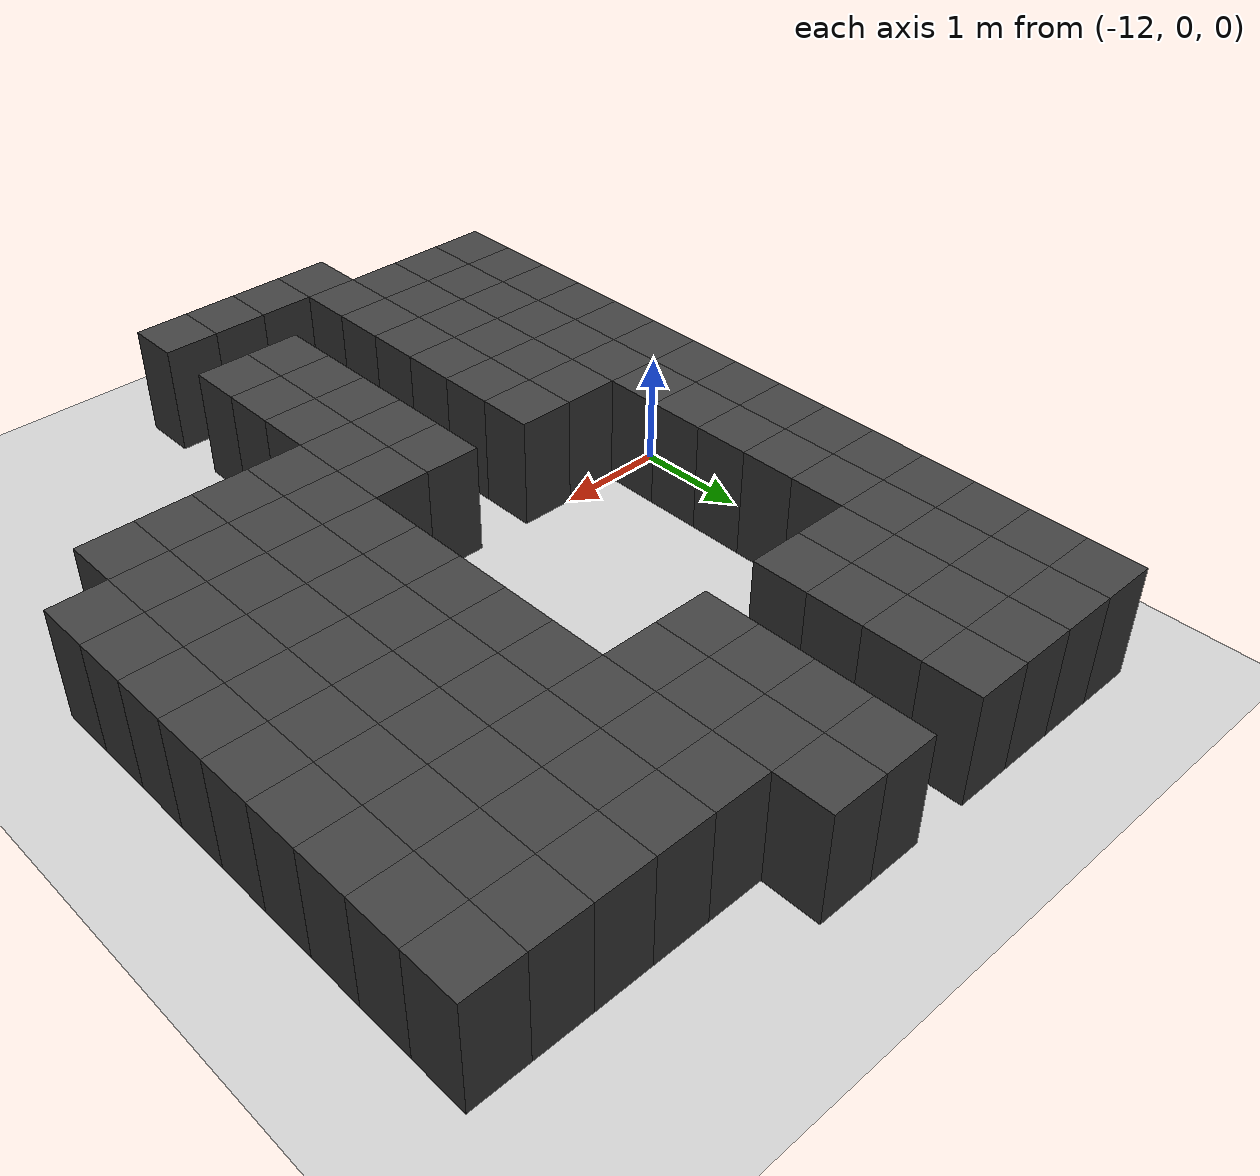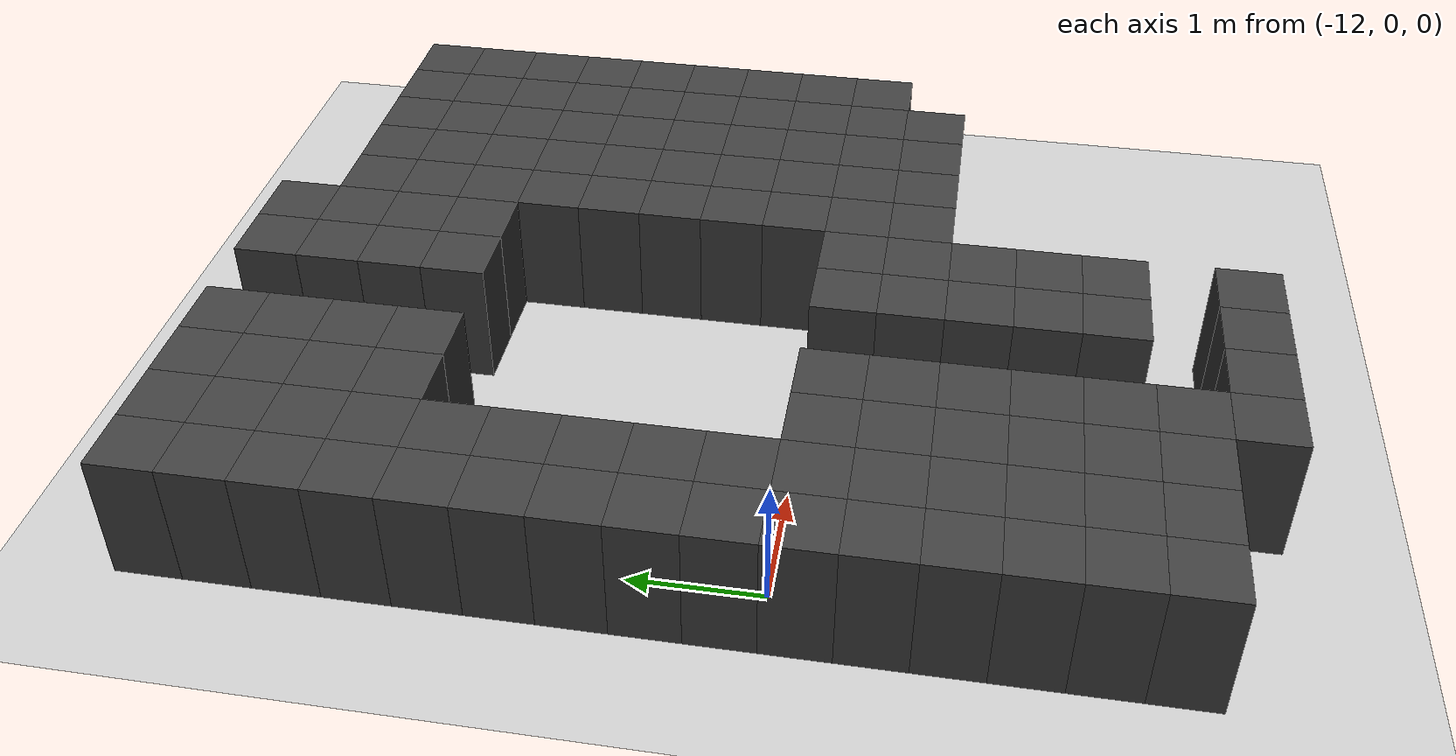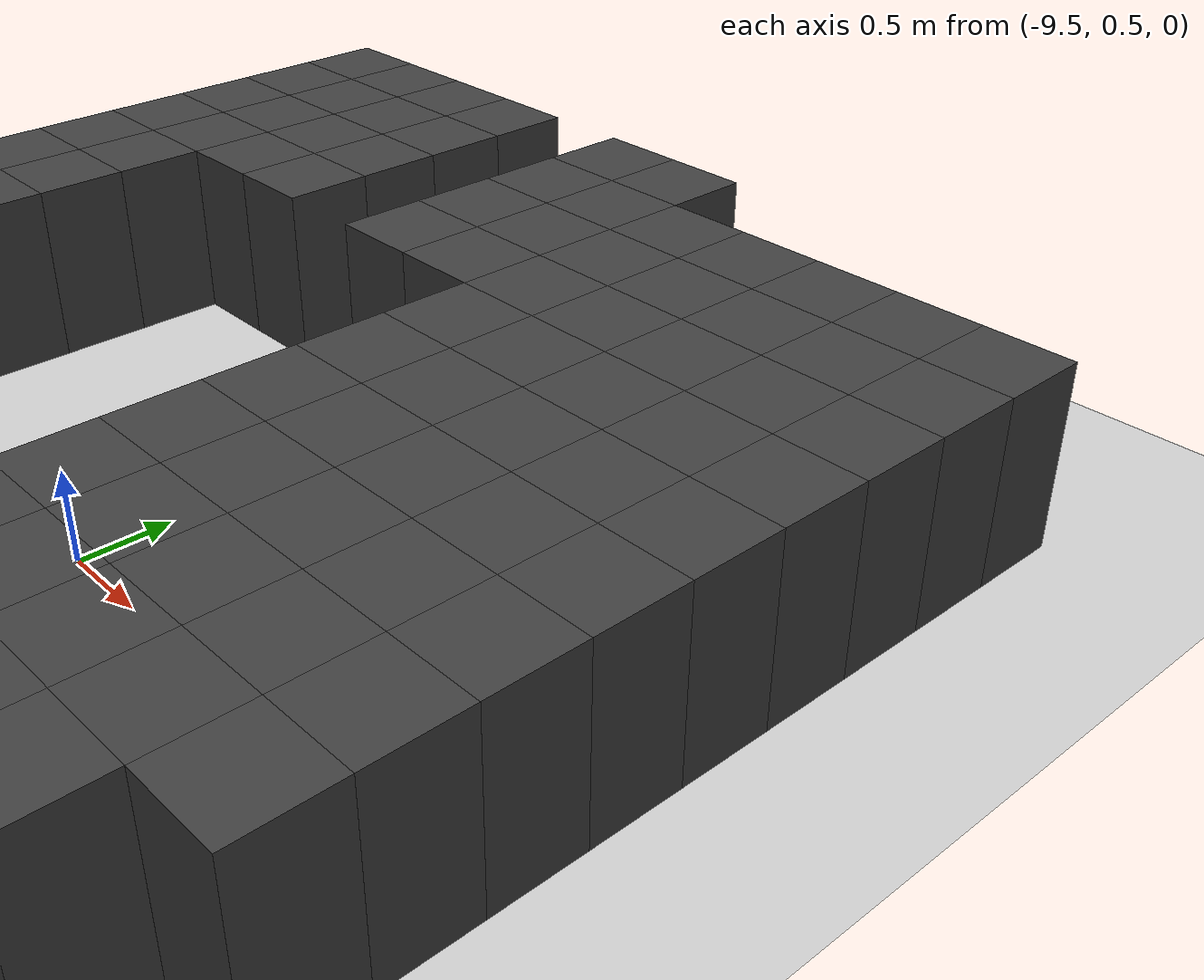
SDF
<sdf version="1.7">
 <world name="map_14510">
  <model name="ground_plane">
   <static>true</static>
   <link name="link">
    <collision name="collision">
     <geometry><plane><normal>0 0 1</normal><size>200 200</size></plane></geometry>
    </collision>
    <visual name="visual">
     <geometry><plane><normal>0 0 1</normal><size>200 200</size></plane></geometry>
     <material><ambient>0.8 0.8 0.8 1</ambient><diffuse>0.8 0.8 0.8 1</diffuse></material>
    </visual>
   </link>
  </model>
  <model name="maze_environment">
   <static>true</static>
   <link name="wall_518">
    <pose>-12.250 4.250 0.500 0 0 0</pose>
    <collision name="col"><geometry><box><size>0.5 0.5 1.0</size></box></geometry></collision>
    <visual name="vis">
     <geometry><box><size>0.5 0.5 1.0</size></box></geometry>
     <material><ambient>0.15 0.15 0.15 1</ambient><diffuse>0.25 0.25 0.25 1</diffuse></material>
    </visual>
   </link>
   <link name="wall_519">
    <pose>-11.750 4.250 0.500 0 0 0</pose>
    <collision name="col"><geometry><box><size>0.5 0.5 1.0</size></box></geometry></collision>
    <visual name="vis">
     <geometry><box><size>0.5 0.5 1.0</size></box></geometry>
     <material><ambient>0.15 0.15 0.15 1</ambient><diffuse>0.25 0.25 0.25 1</diffuse></material>
    </visual>
   </link>
   <link name="wall_520">
    <pose>-11.250 4.250 0.500 0 0 0</pose>
    <collision name="col"><geometry><box><size>0.5 0.5 1.0</size></box></geometry></collision>
    <visual name="vis">
     <geometry><box><size>0.5 0.5 1.0</size></box></geometry>
     <material><ambient>0.15 0.15 0.15 1</ambient><diffuse>0.25 0.25 0.25 1</diffuse></material>
    </visual>
   </link>
   <link name="wall_521">
    <pose>-10.750 4.250 0.500 0 0 0</pose>
    <collision name="col"><geometry><box><size>0.5 0.5 1.0</size></box></geometry></collision>
    <visual name="vis">
     <geometry><box><size>0.5 0.5 1.0</size></box></geometry>
     <material><ambient>0.15 0.15 0.15 1</ambient><diffuse>0.25 0.25 0.25 1</diffuse></material>
    </visual>
   </link>
   <link name="wall_522">
    <pose>-9.750 4.250 0.500 0 0 0</pose>
    <collision name="col"><geometry><box><size>0.5 0.5 1.0</size></box></geometry></collision>
    <visual name="vis">
     <geometry><box><size>0.5 0.5 1.0</size></box></geometry>
     <material><ambient>0.15 0.15 0.15 1</ambient><diffuse>0.25 0.25 0.25 1</diffuse></material>
    </visual>
   </link>
   <link name="wall_523">
    <pose>-9.250 4.250 0.500 0 0 0</pose>
    <collision name="col"><geometry><box><size>0.5 0.5 1.0</size></box></geometry></collision>
    <visual name="vis">
     <geometry><box><size>0.5 0.5 1.0</size></box></geometry>
     <material><ambient>0.15 0.15 0.15 1</ambient><diffuse>0.25 0.25 0.25 1</diffuse></material>
    </visual>
   </link>
   <link name="wall_552">
    <pose>-12.250 3.750 0.500 0 0 0</pose>
    <collision name="col"><geometry><box><size>0.5 0.5 1.0</size></box></geometry></collision>
    <visual name="vis">
     <geometry><box><size>0.5 0.5 1.0</size></box></geometry>
     <material><ambient>0.15 0.15 0.15 1</ambient><diffuse>0.25 0.25 0.25 1</diffuse></material>
    </visual>
   </link>
   <link name="wall_553">
    <pose>-11.750 3.750 0.500 0 0 0</pose>
    <collision name="col"><geometry><box><size>0.5 0.5 1.0</size></box></geometry></collision>
    <visual name="vis">
     <geometry><box><size>0.5 0.5 1.0</size></box></geometry>
     <material><ambient>0.15 0.15 0.15 1</ambient><diffuse>0.25 0.25 0.25 1</diffuse></material>
    </visual>
   </link>
   <link name="wall_554">
    <pose>-11.250 3.750 0.500 0 0 0</pose>
    <collision name="col"><geometry><box><size>0.5 0.5 1.0</size></box></geometry></collision>
    <visual name="vis">
     <geometry><box><size>0.5 0.5 1.0</size></box></geometry>
     <material><ambient>0.15 0.15 0.15 1</ambient><diffuse>0.25 0.25 0.25 1</diffuse></material>
    </visual>
   </link>
   <link name="wall_555">
    <pose>-10.750 3.750 0.500 0 0 0</pose>
    <collision name="col"><geometry><box><size>0.5 0.5 1.0</size></box></geometry></collision>
    <visual name="vis">
     <geometry><box><size>0.5 0.5 1.0</size></box></geometry>
     <material><ambient>0.15 0.15 0.15 1</ambient><diffuse>0.25 0.25 0.25 1</diffuse></material>
    </visual>
   </link>
   <link name="wall_556">
    <pose>-9.750 3.750 0.500 0 0 0</pose>
    <collision name="col"><geometry><box><size>0.5 0.5 1.0</size></box></geometry></collision>
    <visual name="vis">
     <geometry><box><size>0.5 0.5 1.0</size></box></geometry>
     <material><ambient>0.15 0.15 0.15 1</ambient><diffuse>0.25 0.25 0.25 1</diffuse></material>
    </visual>
   </link>
   <link name="wall_557">
    <pose>-9.250 3.750 0.500 0 0 0</pose>
    <collision name="col"><geometry><box><size>0.5 0.5 1.0</size></box></geometry></collision>
    <visual name="vis">
     <geometry><box><size>0.5 0.5 1.0</size></box></geometry>
     <material><ambient>0.15 0.15 0.15 1</ambient><diffuse>0.25 0.25 0.25 1</diffuse></material>
    </visual>
   </link>
   <link name="wall_558">
    <pose>-8.750 3.750 0.500 0 0 0</pose>
    <collision name="col"><geometry><box><size>0.5 0.5 1.0</size></box></geometry></collision>
    <visual name="vis">
     <geometry><box><size>0.5 0.5 1.0</size></box></geometry>
     <material><ambient>0.15 0.15 0.15 1</ambient><diffuse>0.25 0.25 0.25 1</diffuse></material>
    </visual>
   </link>
   <link name="wall_559">
    <pose>-8.250 3.750 0.500 0 0 0</pose>
    <collision name="col"><geometry><box><size>0.5 0.5 1.0</size></box></geometry></collision>
    <visual name="vis">
     <geometry><box><size>0.5 0.5 1.0</size></box></geometry>
     <material><ambient>0.15 0.15 0.15 1</ambient><diffuse>0.25 0.25 0.25 1</diffuse></material>
    </visual>
   </link>
   <link name="wall_560">
    <pose>-7.750 3.750 0.500 0 0 0</pose>
    <collision name="col"><geometry><box><size>0.5 0.5 1.0</size></box></geometry></collision>
    <visual name="vis">
     <geometry><box><size>0.5 0.5 1.0</size></box></geometry>
     <material><ambient>0.15 0.15 0.15 1</ambient><diffuse>0.25 0.25 0.25 1</diffuse></material>
    </visual>
   </link>
   <link name="wall_561">
    <pose>-7.250 3.750 0.500 0 0 0</pose>
    <collision name="col"><geometry><box><size>0.5 0.5 1.0</size></box></geometry></collision>
    <visual name="vis">
     <geometry><box><size>0.5 0.5 1.0</size></box></geometry>
     <material><ambient>0.15 0.15 0.15 1</ambient><diffuse>0.25 0.25 0.25 1</diffuse></material>
    </visual>
   </link>
   <link name="wall_562">
    <pose>-6.750 3.750 0.500 0 0 0</pose>
    <collision name="col"><geometry><box><size>0.5 0.5 1.0</size></box></geometry></collision>
    <visual name="vis">
     <geometry><box><size>0.5 0.5 1.0</size></box></geometry>
     <material><ambient>0.15 0.15 0.15 1</ambient><diffuse>0.25 0.25 0.25 1</diffuse></material>
    </visual>
   </link>
   <link name="wall_594">
    <pose>-12.250 3.250 0.500 0 0 0</pose>
    <collision name="col"><geometry><box><size>0.5 0.5 1.0</size></box></geometry></collision>
    <visual name="vis">
     <geometry><box><size>0.5 0.5 1.0</size></box></geometry>
     <material><ambient>0.15 0.15 0.15 1</ambient><diffuse>0.25 0.25 0.25 1</diffuse></material>
    </visual>
   </link>
   <link name="wall_595">
    <pose>-11.750 3.250 0.500 0 0 0</pose>
    <collision name="col"><geometry><box><size>0.5 0.5 1.0</size></box></geometry></collision>
    <visual name="vis">
     <geometry><box><size>0.5 0.5 1.0</size></box></geometry>
     <material><ambient>0.15 0.15 0.15 1</ambient><diffuse>0.25 0.25 0.25 1</diffuse></material>
    </visual>
   </link>
   <link name="wall_596">
    <pose>-11.250 3.250 0.500 0 0 0</pose>
    <collision name="col"><geometry><box><size>0.5 0.5 1.0</size></box></geometry></collision>
    <visual name="vis">
     <geometry><box><size>0.5 0.5 1.0</size></box></geometry>
     <material><ambient>0.15 0.15 0.15 1</ambient><diffuse>0.25 0.25 0.25 1</diffuse></material>
    </visual>
   </link>
   <link name="wall_597">
    <pose>-10.750 3.250 0.500 0 0 0</pose>
    <collision name="col"><geometry><box><size>0.5 0.5 1.0</size></box></geometry></collision>
    <visual name="vis">
     <geometry><box><size>0.5 0.5 1.0</size></box></geometry>
     <material><ambient>0.15 0.15 0.15 1</ambient><diffuse>0.25 0.25 0.25 1</diffuse></material>
    </visual>
   </link>
   <link name="wall_598">
    <pose>-9.750 3.250 0.500 0 0 0</pose>
    <collision name="col"><geometry><box><size>0.5 0.5 1.0</size></box></geometry></collision>
    <visual name="vis">
     <geometry><box><size>0.5 0.5 1.0</size></box></geometry>
     <material><ambient>0.15 0.15 0.15 1</ambient><diffuse>0.25 0.25 0.25 1</diffuse></material>
    </visual>
   </link>
   <link name="wall_599">
    <pose>-9.250 3.250 0.500 0 0 0</pose>
    <collision name="col"><geometry><box><size>0.5 0.5 1.0</size></box></geometry></collision>
    <visual name="vis">
     <geometry><box><size>0.5 0.5 1.0</size></box></geometry>
     <material><ambient>0.15 0.15 0.15 1</ambient><diffuse>0.25 0.25 0.25 1</diffuse></material>
    </visual>
   </link>
   <link name="wall_600">
    <pose>-8.750 3.250 0.500 0 0 0</pose>
    <collision name="col"><geometry><box><size>0.5 0.5 1.0</size></box></geometry></collision>
    <visual name="vis">
     <geometry><box><size>0.5 0.5 1.0</size></box></geometry>
     <material><ambient>0.15 0.15 0.15 1</ambient><diffuse>0.25 0.25 0.25 1</diffuse></material>
    </visual>
   </link>
   <link name="wall_601">
    <pose>-8.250 3.250 0.500 0 0 0</pose>
    <collision name="col"><geometry><box><size>0.5 0.5 1.0</size></box></geometry></collision>
    <visual name="vis">
     <geometry><box><size>0.5 0.5 1.0</size></box></geometry>
     <material><ambient>0.15 0.15 0.15 1</ambient><diffuse>0.25 0.25 0.25 1</diffuse></material>
    </visual>
   </link>
   <link name="wall_602">
    <pose>-7.750 3.250 0.500 0 0 0</pose>
    <collision name="col"><geometry><box><size>0.5 0.5 1.0</size></box></geometry></collision>
    <visual name="vis">
     <geometry><box><size>0.5 0.5 1.0</size></box></geometry>
     <material><ambient>0.15 0.15 0.15 1</ambient><diffuse>0.25 0.25 0.25 1</diffuse></material>
    </visual>
   </link>
   <link name="wall_603">
    <pose>-7.250 3.250 0.500 0 0 0</pose>
    <collision name="col"><geometry><box><size>0.5 0.5 1.0</size></box></geometry></collision>
    <visual name="vis">
     <geometry><box><size>0.5 0.5 1.0</size></box></geometry>
     <material><ambient>0.15 0.15 0.15 1</ambient><diffuse>0.25 0.25 0.25 1</diffuse></material>
    </visual>
   </link>
   <link name="wall_604">
    <pose>-6.750 3.250 0.500 0 0 0</pose>
    <collision name="col"><geometry><box><size>0.5 0.5 1.0</size></box></geometry></collision>
    <visual name="vis">
     <geometry><box><size>0.5 0.5 1.0</size></box></geometry>
     <material><ambient>0.15 0.15 0.15 1</ambient><diffuse>0.25 0.25 0.25 1</diffuse></material>
    </visual>
   </link>
   <link name="wall_634">
    <pose>-12.250 2.750 0.500 0 0 0</pose>
    <collision name="col"><geometry><box><size>0.5 0.5 1.0</size></box></geometry></collision>
    <visual name="vis">
     <geometry><box><size>0.5 0.5 1.0</size></box></geometry>
     <material><ambient>0.15 0.15 0.15 1</ambient><diffuse>0.25 0.25 0.25 1</diffuse></material>
    </visual>
   </link>
   <link name="wall_635">
    <pose>-11.750 2.750 0.500 0 0 0</pose>
    <collision name="col"><geometry><box><size>0.5 0.5 1.0</size></box></geometry></collision>
    <visual name="vis">
     <geometry><box><size>0.5 0.5 1.0</size></box></geometry>
     <material><ambient>0.15 0.15 0.15 1</ambient><diffuse>0.25 0.25 0.25 1</diffuse></material>
    </visual>
   </link>
   <link name="wall_636">
    <pose>-11.250 2.750 0.500 0 0 0</pose>
    <collision name="col"><geometry><box><size>0.5 0.5 1.0</size></box></geometry></collision>
    <visual name="vis">
     <geometry><box><size>0.5 0.5 1.0</size></box></geometry>
     <material><ambient>0.15 0.15 0.15 1</ambient><diffuse>0.25 0.25 0.25 1</diffuse></material>
    </visual>
   </link>
   <link name="wall_637">
    <pose>-10.750 2.750 0.500 0 0 0</pose>
    <collision name="col"><geometry><box><size>0.5 0.5 1.0</size></box></geometry></collision>
    <visual name="vis">
     <geometry><box><size>0.5 0.5 1.0</size></box></geometry>
     <material><ambient>0.15 0.15 0.15 1</ambient><diffuse>0.25 0.25 0.25 1</diffuse></material>
    </visual>
   </link>
   <link name="wall_638">
    <pose>-9.750 2.750 0.500 0 0 0</pose>
    <collision name="col"><geometry><box><size>0.5 0.5 1.0</size></box></geometry></collision>
    <visual name="vis">
     <geometry><box><size>0.5 0.5 1.0</size></box></geometry>
     <material><ambient>0.15 0.15 0.15 1</ambient><diffuse>0.25 0.25 0.25 1</diffuse></material>
    </visual>
   </link>
   <link name="wall_639">
    <pose>-9.250 2.750 0.500 0 0 0</pose>
    <collision name="col"><geometry><box><size>0.5 0.5 1.0</size></box></geometry></collision>
    <visual name="vis">
     <geometry><box><size>0.5 0.5 1.0</size></box></geometry>
     <material><ambient>0.15 0.15 0.15 1</ambient><diffuse>0.25 0.25 0.25 1</diffuse></material>
    </visual>
   </link>
   <link name="wall_640">
    <pose>-8.750 2.750 0.500 0 0 0</pose>
    <collision name="col"><geometry><box><size>0.5 0.5 1.0</size></box></geometry></collision>
    <visual name="vis">
     <geometry><box><size>0.5 0.5 1.0</size></box></geometry>
     <material><ambient>0.15 0.15 0.15 1</ambient><diffuse>0.25 0.25 0.25 1</diffuse></material>
    </visual>
   </link>
   <link name="wall_641">
    <pose>-8.250 2.750 0.500 0 0 0</pose>
    <collision name="col"><geometry><box><size>0.5 0.5 1.0</size></box></geometry></collision>
    <visual name="vis">
     <geometry><box><size>0.5 0.5 1.0</size></box></geometry>
     <material><ambient>0.15 0.15 0.15 1</ambient><diffuse>0.25 0.25 0.25 1</diffuse></material>
    </visual>
   </link>
   <link name="wall_642">
    <pose>-7.750 2.750 0.500 0 0 0</pose>
    <collision name="col"><geometry><box><size>0.5 0.5 1.0</size></box></geometry></collision>
    <visual name="vis">
     <geometry><box><size>0.5 0.5 1.0</size></box></geometry>
     <material><ambient>0.15 0.15 0.15 1</ambient><diffuse>0.25 0.25 0.25 1</diffuse></material>
    </visual>
   </link>
   <link name="wall_643">
    <pose>-7.250 2.750 0.500 0 0 0</pose>
    <collision name="col"><geometry><box><size>0.5 0.5 1.0</size></box></geometry></collision>
    <visual name="vis">
     <geometry><box><size>0.5 0.5 1.0</size></box></geometry>
     <material><ambient>0.15 0.15 0.15 1</ambient><diffuse>0.25 0.25 0.25 1</diffuse></material>
    </visual>
   </link>
   <link name="wall_644">
    <pose>-6.750 2.750 0.500 0 0 0</pose>
    <collision name="col"><geometry><box><size>0.5 0.5 1.0</size></box></geometry></collision>
    <visual name="vis">
     <geometry><box><size>0.5 0.5 1.0</size></box></geometry>
     <material><ambient>0.15 0.15 0.15 1</ambient><diffuse>0.25 0.25 0.25 1</diffuse></material>
    </visual>
   </link>
   <link name="wall_676">
    <pose>-12.250 2.250 0.500 0 0 0</pose>
    <collision name="col"><geometry><box><size>0.5 0.5 1.0</size></box></geometry></collision>
    <visual name="vis">
     <geometry><box><size>0.5 0.5 1.0</size></box></geometry>
     <material><ambient>0.15 0.15 0.15 1</ambient><diffuse>0.25 0.25 0.25 1</diffuse></material>
    </visual>
   </link>
   <link name="wall_677">
    <pose>-11.750 2.250 0.500 0 0 0</pose>
    <collision name="col"><geometry><box><size>0.5 0.5 1.0</size></box></geometry></collision>
    <visual name="vis">
     <geometry><box><size>0.5 0.5 1.0</size></box></geometry>
     <material><ambient>0.15 0.15 0.15 1</ambient><diffuse>0.25 0.25 0.25 1</diffuse></material>
    </visual>
   </link>
   <link name="wall_678">
    <pose>-8.750 2.250 0.500 0 0 0</pose>
    <collision name="col"><geometry><box><size>0.5 0.5 1.0</size></box></geometry></collision>
    <visual name="vis">
     <geometry><box><size>0.5 0.5 1.0</size></box></geometry>
     <material><ambient>0.15 0.15 0.15 1</ambient><diffuse>0.25 0.25 0.25 1</diffuse></material>
    </visual>
   </link>
   <link name="wall_679">
    <pose>-8.250 2.250 0.500 0 0 0</pose>
    <collision name="col"><geometry><box><size>0.5 0.5 1.0</size></box></geometry></collision>
    <visual name="vis">
     <geometry><box><size>0.5 0.5 1.0</size></box></geometry>
     <material><ambient>0.15 0.15 0.15 1</ambient><diffuse>0.25 0.25 0.25 1</diffuse></material>
    </visual>
   </link>
   <link name="wall_680">
    <pose>-7.750 2.250 0.500 0 0 0</pose>
    <collision name="col"><geometry><box><size>0.5 0.5 1.0</size></box></geometry></collision>
    <visual name="vis">
     <geometry><box><size>0.5 0.5 1.0</size></box></geometry>
     <material><ambient>0.15 0.15 0.15 1</ambient><diffuse>0.25 0.25 0.25 1</diffuse></material>
    </visual>
   </link>
   <link name="wall_681">
    <pose>-7.250 2.250 0.500 0 0 0</pose>
    <collision name="col"><geometry><box><size>0.5 0.5 1.0</size></box></geometry></collision>
    <visual name="vis">
     <geometry><box><size>0.5 0.5 1.0</size></box></geometry>
     <material><ambient>0.15 0.15 0.15 1</ambient><diffuse>0.25 0.25 0.25 1</diffuse></material>
    </visual>
   </link>
   <link name="wall_682">
    <pose>-6.750 2.250 0.500 0 0 0</pose>
    <collision name="col"><geometry><box><size>0.5 0.5 1.0</size></box></geometry></collision>
    <visual name="vis">
     <geometry><box><size>0.5 0.5 1.0</size></box></geometry>
     <material><ambient>0.15 0.15 0.15 1</ambient><diffuse>0.25 0.25 0.25 1</diffuse></material>
    </visual>
   </link>
   <link name="wall_714">
    <pose>-12.250 1.750 0.500 0 0 0</pose>
    <collision name="col"><geometry><box><size>0.5 0.5 1.0</size></box></geometry></collision>
    <visual name="vis">
     <geometry><box><size>0.5 0.5 1.0</size></box></geometry>
     <material><ambient>0.15 0.15 0.15 1</ambient><diffuse>0.25 0.25 0.25 1</diffuse></material>
    </visual>
   </link>
   <link name="wall_715">
    <pose>-11.750 1.750 0.500 0 0 0</pose>
    <collision name="col"><geometry><box><size>0.5 0.5 1.0</size></box></geometry></collision>
    <visual name="vis">
     <geometry><box><size>0.5 0.5 1.0</size></box></geometry>
     <material><ambient>0.15 0.15 0.15 1</ambient><diffuse>0.25 0.25 0.25 1</diffuse></material>
    </visual>
   </link>
   <link name="wall_716">
    <pose>-8.750 1.750 0.500 0 0 0</pose>
    <collision name="col"><geometry><box><size>0.5 0.5 1.0</size></box></geometry></collision>
    <visual name="vis">
     <geometry><box><size>0.5 0.5 1.0</size></box></geometry>
     <material><ambient>0.15 0.15 0.15 1</ambient><diffuse>0.25 0.25 0.25 1</diffuse></material>
    </visual>
   </link>
   <link name="wall_717">
    <pose>-8.250 1.750 0.500 0 0 0</pose>
    <collision name="col"><geometry><box><size>0.5 0.5 1.0</size></box></geometry></collision>
    <visual name="vis">
     <geometry><box><size>0.5 0.5 1.0</size></box></geometry>
     <material><ambient>0.15 0.15 0.15 1</ambient><diffuse>0.25 0.25 0.25 1</diffuse></material>
    </visual>
   </link>
   <link name="wall_718">
    <pose>-7.750 1.750 0.500 0 0 0</pose>
    <collision name="col"><geometry><box><size>0.5 0.5 1.0</size></box></geometry></collision>
    <visual name="vis">
     <geometry><box><size>0.5 0.5 1.0</size></box></geometry>
     <material><ambient>0.15 0.15 0.15 1</ambient><diffuse>0.25 0.25 0.25 1</diffuse></material>
    </visual>
   </link>
   <link name="wall_719">
    <pose>-7.250 1.750 0.500 0 0 0</pose>
    <collision name="col"><geometry><box><size>0.5 0.5 1.0</size></box></geometry></collision>
    <visual name="vis">
     <geometry><box><size>0.5 0.5 1.0</size></box></geometry>
     <material><ambient>0.15 0.15 0.15 1</ambient><diffuse>0.25 0.25 0.25 1</diffuse></material>
    </visual>
   </link>
   <link name="wall_720">
    <pose>-6.750 1.750 0.500 0 0 0</pose>
    <collision name="col"><geometry><box><size>0.5 0.5 1.0</size></box></geometry></collision>
    <visual name="vis">
     <geometry><box><size>0.5 0.5 1.0</size></box></geometry>
     <material><ambient>0.15 0.15 0.15 1</ambient><diffuse>0.25 0.25 0.25 1</diffuse></material>
    </visual>
   </link>
   <link name="wall_752">
    <pose>-12.250 1.250 0.500 0 0 0</pose>
    <collision name="col"><geometry><box><size>0.5 0.5 1.0</size></box></geometry></collision>
    <visual name="vis">
     <geometry><box><size>0.5 0.5 1.0</size></box></geometry>
     <material><ambient>0.15 0.15 0.15 1</ambient><diffuse>0.25 0.25 0.25 1</diffuse></material>
    </visual>
   </link>
   <link name="wall_753">
    <pose>-11.750 1.250 0.500 0 0 0</pose>
    <collision name="col"><geometry><box><size>0.5 0.5 1.0</size></box></geometry></collision>
    <visual name="vis">
     <geometry><box><size>0.5 0.5 1.0</size></box></geometry>
     <material><ambient>0.15 0.15 0.15 1</ambient><diffuse>0.25 0.25 0.25 1</diffuse></material>
    </visual>
   </link>
   <link name="wall_754">
    <pose>-8.750 1.250 0.500 0 0 0</pose>
    <collision name="col"><geometry><box><size>0.5 0.5 1.0</size></box></geometry></collision>
    <visual name="vis">
     <geometry><box><size>0.5 0.5 1.0</size></box></geometry>
     <material><ambient>0.15 0.15 0.15 1</ambient><diffuse>0.25 0.25 0.25 1</diffuse></material>
    </visual>
   </link>
   <link name="wall_755">
    <pose>-8.250 1.250 0.500 0 0 0</pose>
    <collision name="col"><geometry><box><size>0.5 0.5 1.0</size></box></geometry></collision>
    <visual name="vis">
     <geometry><box><size>0.5 0.5 1.0</size></box></geometry>
     <material><ambient>0.15 0.15 0.15 1</ambient><diffuse>0.25 0.25 0.25 1</diffuse></material>
    </visual>
   </link>
   <link name="wall_756">
    <pose>-7.750 1.250 0.500 0 0 0</pose>
    <collision name="col"><geometry><box><size>0.5 0.5 1.0</size></box></geometry></collision>
    <visual name="vis">
     <geometry><box><size>0.5 0.5 1.0</size></box></geometry>
     <material><ambient>0.15 0.15 0.15 1</ambient><diffuse>0.25 0.25 0.25 1</diffuse></material>
    </visual>
   </link>
   <link name="wall_757">
    <pose>-7.250 1.250 0.500 0 0 0</pose>
    <collision name="col"><geometry><box><size>0.5 0.5 1.0</size></box></geometry></collision>
    <visual name="vis">
     <geometry><box><size>0.5 0.5 1.0</size></box></geometry>
     <material><ambient>0.15 0.15 0.15 1</ambient><diffuse>0.25 0.25 0.25 1</diffuse></material>
    </visual>
   </link>
   <link name="wall_758">
    <pose>-6.750 1.250 0.500 0 0 0</pose>
    <collision name="col"><geometry><box><size>0.5 0.5 1.0</size></box></geometry></collision>
    <visual name="vis">
     <geometry><box><size>0.5 0.5 1.0</size></box></geometry>
     <material><ambient>0.15 0.15 0.15 1</ambient><diffuse>0.25 0.25 0.25 1</diffuse></material>
    </visual>
   </link>
   <link name="wall_789">
    <pose>-12.250 0.750 0.500 0 0 0</pose>
    <collision name="col"><geometry><box><size>0.5 0.5 1.0</size></box></geometry></collision>
    <visual name="vis">
     <geometry><box><size>0.5 0.5 1.0</size></box></geometry>
     <material><ambient>0.15 0.15 0.15 1</ambient><diffuse>0.25 0.25 0.25 1</diffuse></material>
    </visual>
   </link>
   <link name="wall_790">
    <pose>-11.750 0.750 0.500 0 0 0</pose>
    <collision name="col"><geometry><box><size>0.5 0.5 1.0</size></box></geometry></collision>
    <visual name="vis">
     <geometry><box><size>0.5 0.5 1.0</size></box></geometry>
     <material><ambient>0.15 0.15 0.15 1</ambient><diffuse>0.25 0.25 0.25 1</diffuse></material>
    </visual>
   </link>
   <link name="wall_791">
    <pose>-8.750 0.750 0.500 0 0 0</pose>
    <collision name="col"><geometry><box><size>0.5 0.5 1.0</size></box></geometry></collision>
    <visual name="vis">
     <geometry><box><size>0.5 0.5 1.0</size></box></geometry>
     <material><ambient>0.15 0.15 0.15 1</ambient><diffuse>0.25 0.25 0.25 1</diffuse></material>
    </visual>
   </link>
   <link name="wall_792">
    <pose>-8.250 0.750 0.500 0 0 0</pose>
    <collision name="col"><geometry><box><size>0.5 0.5 1.0</size></box></geometry></collision>
    <visual name="vis">
     <geometry><box><size>0.5 0.5 1.0</size></box></geometry>
     <material><ambient>0.15 0.15 0.15 1</ambient><diffuse>0.25 0.25 0.25 1</diffuse></material>
    </visual>
   </link>
   <link name="wall_793">
    <pose>-7.750 0.750 0.500 0 0 0</pose>
    <collision name="col"><geometry><box><size>0.5 0.5 1.0</size></box></geometry></collision>
    <visual name="vis">
     <geometry><box><size>0.5 0.5 1.0</size></box></geometry>
     <material><ambient>0.15 0.15 0.15 1</ambient><diffuse>0.25 0.25 0.25 1</diffuse></material>
    </visual>
   </link>
   <link name="wall_794">
    <pose>-7.250 0.750 0.500 0 0 0</pose>
    <collision name="col"><geometry><box><size>0.5 0.5 1.0</size></box></geometry></collision>
    <visual name="vis">
     <geometry><box><size>0.5 0.5 1.0</size></box></geometry>
     <material><ambient>0.15 0.15 0.15 1</ambient><diffuse>0.25 0.25 0.25 1</diffuse></material>
    </visual>
   </link>
   <link name="wall_795">
    <pose>-6.750 0.750 0.500 0 0 0</pose>
    <collision name="col"><geometry><box><size>0.5 0.5 1.0</size></box></geometry></collision>
    <visual name="vis">
     <geometry><box><size>0.5 0.5 1.0</size></box></geometry>
     <material><ambient>0.15 0.15 0.15 1</ambient><diffuse>0.25 0.25 0.25 1</diffuse></material>
    </visual>
   </link>
   <link name="wall_826">
    <pose>-12.250 0.250 0.500 0 0 0</pose>
    <collision name="col"><geometry><box><size>0.5 0.5 1.0</size></box></geometry></collision>
    <visual name="vis">
     <geometry><box><size>0.5 0.5 1.0</size></box></geometry>
     <material><ambient>0.15 0.15 0.15 1</ambient><diffuse>0.25 0.25 0.25 1</diffuse></material>
    </visual>
   </link>
   <link name="wall_827">
    <pose>-11.750 0.250 0.500 0 0 0</pose>
    <collision name="col"><geometry><box><size>0.5 0.5 1.0</size></box></geometry></collision>
    <visual name="vis">
     <geometry><box><size>0.5 0.5 1.0</size></box></geometry>
     <material><ambient>0.15 0.15 0.15 1</ambient><diffuse>0.25 0.25 0.25 1</diffuse></material>
    </visual>
   </link>
   <link name="wall_828">
    <pose>-8.750 0.250 0.500 0 0 0</pose>
    <collision name="col"><geometry><box><size>0.5 0.5 1.0</size></box></geometry></collision>
    <visual name="vis">
     <geometry><box><size>0.5 0.5 1.0</size></box></geometry>
     <material><ambient>0.15 0.15 0.15 1</ambient><diffuse>0.25 0.25 0.25 1</diffuse></material>
    </visual>
   </link>
   <link name="wall_829">
    <pose>-8.250 0.250 0.500 0 0 0</pose>
    <collision name="col"><geometry><box><size>0.5 0.5 1.0</size></box></geometry></collision>
    <visual name="vis">
     <geometry><box><size>0.5 0.5 1.0</size></box></geometry>
     <material><ambient>0.15 0.15 0.15 1</ambient><diffuse>0.25 0.25 0.25 1</diffuse></material>
    </visual>
   </link>
   <link name="wall_830">
    <pose>-7.750 0.250 0.500 0 0 0</pose>
    <collision name="col"><geometry><box><size>0.5 0.5 1.0</size></box></geometry></collision>
    <visual name="vis">
     <geometry><box><size>0.5 0.5 1.0</size></box></geometry>
     <material><ambient>0.15 0.15 0.15 1</ambient><diffuse>0.25 0.25 0.25 1</diffuse></material>
    </visual>
   </link>
   <link name="wall_831">
    <pose>-7.250 0.250 0.500 0 0 0</pose>
    <collision name="col"><geometry><box><size>0.5 0.5 1.0</size></box></geometry></collision>
    <visual name="vis">
     <geometry><box><size>0.5 0.5 1.0</size></box></geometry>
     <material><ambient>0.15 0.15 0.15 1</ambient><diffuse>0.25 0.25 0.25 1</diffuse></material>
    </visual>
   </link>
   <link name="wall_832">
    <pose>-6.750 0.250 0.500 0 0 0</pose>
    <collision name="col"><geometry><box><size>0.5 0.5 1.0</size></box></geometry></collision>
    <visual name="vis">
     <geometry><box><size>0.5 0.5 1.0</size></box></geometry>
     <material><ambient>0.15 0.15 0.15 1</ambient><diffuse>0.25 0.25 0.25 1</diffuse></material>
    </visual>
   </link>
   <link name="wall_863">
    <pose>-12.250 -0.250 0.500 0 0 0</pose>
    <collision name="col"><geometry><box><size>0.5 0.5 1.0</size></box></geometry></collision>
    <visual name="vis">
     <geometry><box><size>0.5 0.5 1.0</size></box></geometry>
     <material><ambient>0.15 0.15 0.15 1</ambient><diffuse>0.25 0.25 0.25 1</diffuse></material>
    </visual>
   </link>
   <link name="wall_864">
    <pose>-11.750 -0.250 0.500 0 0 0</pose>
    <collision name="col"><geometry><box><size>0.5 0.5 1.0</size></box></geometry></collision>
    <visual name="vis">
     <geometry><box><size>0.5 0.5 1.0</size></box></geometry>
     <material><ambient>0.15 0.15 0.15 1</ambient><diffuse>0.25 0.25 0.25 1</diffuse></material>
    </visual>
   </link>
   <link name="wall_865">
    <pose>-11.250 -0.250 0.500 0 0 0</pose>
    <collision name="col"><geometry><box><size>0.5 0.5 1.0</size></box></geometry></collision>
    <visual name="vis">
     <geometry><box><size>0.5 0.5 1.0</size></box></geometry>
     <material><ambient>0.15 0.15 0.15 1</ambient><diffuse>0.25 0.25 0.25 1</diffuse></material>
    </visual>
   </link>
   <link name="wall_866">
    <pose>-10.750 -0.250 0.500 0 0 0</pose>
    <collision name="col"><geometry><box><size>0.5 0.5 1.0</size></box></geometry></collision>
    <visual name="vis">
     <geometry><box><size>0.5 0.5 1.0</size></box></geometry>
     <material><ambient>0.15 0.15 0.15 1</ambient><diffuse>0.25 0.25 0.25 1</diffuse></material>
    </visual>
   </link>
   <link name="wall_867">
    <pose>-9.750 -0.250 0.500 0 0 0</pose>
    <collision name="col"><geometry><box><size>0.5 0.5 1.0</size></box></geometry></collision>
    <visual name="vis">
     <geometry><box><size>0.5 0.5 1.0</size></box></geometry>
     <material><ambient>0.15 0.15 0.15 1</ambient><diffuse>0.25 0.25 0.25 1</diffuse></material>
    </visual>
   </link>
   <link name="wall_868">
    <pose>-9.250 -0.250 0.500 0 0 0</pose>
    <collision name="col"><geometry><box><size>0.5 0.5 1.0</size></box></geometry></collision>
    <visual name="vis">
     <geometry><box><size>0.5 0.5 1.0</size></box></geometry>
     <material><ambient>0.15 0.15 0.15 1</ambient><diffuse>0.25 0.25 0.25 1</diffuse></material>
    </visual>
   </link>
   <link name="wall_869">
    <pose>-8.750 -0.250 0.500 0 0 0</pose>
    <collision name="col"><geometry><box><size>0.5 0.5 1.0</size></box></geometry></collision>
    <visual name="vis">
     <geometry><box><size>0.5 0.5 1.0</size></box></geometry>
     <material><ambient>0.15 0.15 0.15 1</ambient><diffuse>0.25 0.25 0.25 1</diffuse></material>
    </visual>
   </link>
   <link name="wall_870">
    <pose>-8.250 -0.250 0.500 0 0 0</pose>
    <collision name="col"><geometry><box><size>0.5 0.5 1.0</size></box></geometry></collision>
    <visual name="vis">
     <geometry><box><size>0.5 0.5 1.0</size></box></geometry>
     <material><ambient>0.15 0.15 0.15 1</ambient><diffuse>0.25 0.25 0.25 1</diffuse></material>
    </visual>
   </link>
   <link name="wall_871">
    <pose>-7.750 -0.250 0.500 0 0 0</pose>
    <collision name="col"><geometry><box><size>0.5 0.5 1.0</size></box></geometry></collision>
    <visual name="vis">
     <geometry><box><size>0.5 0.5 1.0</size></box></geometry>
     <material><ambient>0.15 0.15 0.15 1</ambient><diffuse>0.25 0.25 0.25 1</diffuse></material>
    </visual>
   </link>
   <link name="wall_872">
    <pose>-7.250 -0.250 0.500 0 0 0</pose>
    <collision name="col"><geometry><box><size>0.5 0.5 1.0</size></box></geometry></collision>
    <visual name="vis">
     <geometry><box><size>0.5 0.5 1.0</size></box></geometry>
     <material><ambient>0.15 0.15 0.15 1</ambient><diffuse>0.25 0.25 0.25 1</diffuse></material>
    </visual>
   </link>
   <link name="wall_873">
    <pose>-6.750 -0.250 0.500 0 0 0</pose>
    <collision name="col"><geometry><box><size>0.5 0.5 1.0</size></box></geometry></collision>
    <visual name="vis">
     <geometry><box><size>0.5 0.5 1.0</size></box></geometry>
     <material><ambient>0.15 0.15 0.15 1</ambient><diffuse>0.25 0.25 0.25 1</diffuse></material>
    </visual>
   </link>
   <link name="wall_904">
    <pose>-12.250 -0.750 0.500 0 0 0</pose>
    <collision name="col"><geometry><box><size>0.5 0.5 1.0</size></box></geometry></collision>
    <visual name="vis">
     <geometry><box><size>0.5 0.5 1.0</size></box></geometry>
     <material><ambient>0.15 0.15 0.15 1</ambient><diffuse>0.25 0.25 0.25 1</diffuse></material>
    </visual>
   </link>
   <link name="wall_905">
    <pose>-11.750 -0.750 0.500 0 0 0</pose>
    <collision name="col"><geometry><box><size>0.5 0.5 1.0</size></box></geometry></collision>
    <visual name="vis">
     <geometry><box><size>0.5 0.5 1.0</size></box></geometry>
     <material><ambient>0.15 0.15 0.15 1</ambient><diffuse>0.25 0.25 0.25 1</diffuse></material>
    </visual>
   </link>
   <link name="wall_906">
    <pose>-11.250 -0.750 0.500 0 0 0</pose>
    <collision name="col"><geometry><box><size>0.5 0.5 1.0</size></box></geometry></collision>
    <visual name="vis">
     <geometry><box><size>0.5 0.5 1.0</size></box></geometry>
     <material><ambient>0.15 0.15 0.15 1</ambient><diffuse>0.25 0.25 0.25 1</diffuse></material>
    </visual>
   </link>
   <link name="wall_907">
    <pose>-10.750 -0.750 0.500 0 0 0</pose>
    <collision name="col"><geometry><box><size>0.5 0.5 1.0</size></box></geometry></collision>
    <visual name="vis">
     <geometry><box><size>0.5 0.5 1.0</size></box></geometry>
     <material><ambient>0.15 0.15 0.15 1</ambient><diffuse>0.25 0.25 0.25 1</diffuse></material>
    </visual>
   </link>
   <link name="wall_908">
    <pose>-9.750 -0.750 0.500 0 0 0</pose>
    <collision name="col"><geometry><box><size>0.5 0.5 1.0</size></box></geometry></collision>
    <visual name="vis">
     <geometry><box><size>0.5 0.5 1.0</size></box></geometry>
     <material><ambient>0.15 0.15 0.15 1</ambient><diffuse>0.25 0.25 0.25 1</diffuse></material>
    </visual>
   </link>
   <link name="wall_909">
    <pose>-9.250 -0.750 0.500 0 0 0</pose>
    <collision name="col"><geometry><box><size>0.5 0.5 1.0</size></box></geometry></collision>
    <visual name="vis">
     <geometry><box><size>0.5 0.5 1.0</size></box></geometry>
     <material><ambient>0.15 0.15 0.15 1</ambient><diffuse>0.25 0.25 0.25 1</diffuse></material>
    </visual>
   </link>
   <link name="wall_910">
    <pose>-8.750 -0.750 0.500 0 0 0</pose>
    <collision name="col"><geometry><box><size>0.5 0.5 1.0</size></box></geometry></collision>
    <visual name="vis">
     <geometry><box><size>0.5 0.5 1.0</size></box></geometry>
     <material><ambient>0.15 0.15 0.15 1</ambient><diffuse>0.25 0.25 0.25 1</diffuse></material>
    </visual>
   </link>
   <link name="wall_911">
    <pose>-8.250 -0.750 0.500 0 0 0</pose>
    <collision name="col"><geometry><box><size>0.5 0.5 1.0</size></box></geometry></collision>
    <visual name="vis">
     <geometry><box><size>0.5 0.5 1.0</size></box></geometry>
     <material><ambient>0.15 0.15 0.15 1</ambient><diffuse>0.25 0.25 0.25 1</diffuse></material>
    </visual>
   </link>
   <link name="wall_912">
    <pose>-7.750 -0.750 0.500 0 0 0</pose>
    <collision name="col"><geometry><box><size>0.5 0.5 1.0</size></box></geometry></collision>
    <visual name="vis">
     <geometry><box><size>0.5 0.5 1.0</size></box></geometry>
     <material><ambient>0.15 0.15 0.15 1</ambient><diffuse>0.25 0.25 0.25 1</diffuse></material>
    </visual>
   </link>
   <link name="wall_913">
    <pose>-7.250 -0.750 0.500 0 0 0</pose>
    <collision name="col"><geometry><box><size>0.5 0.5 1.0</size></box></geometry></collision>
    <visual name="vis">
     <geometry><box><size>0.5 0.5 1.0</size></box></geometry>
     <material><ambient>0.15 0.15 0.15 1</ambient><diffuse>0.25 0.25 0.25 1</diffuse></material>
    </visual>
   </link>
   <link name="wall_939">
    <pose>-12.250 -1.250 0.500 0 0 0</pose>
    <collision name="col"><geometry><box><size>0.5 0.5 1.0</size></box></geometry></collision>
    <visual name="vis">
     <geometry><box><size>0.5 0.5 1.0</size></box></geometry>
     <material><ambient>0.15 0.15 0.15 1</ambient><diffuse>0.25 0.25 0.25 1</diffuse></material>
    </visual>
   </link>
   <link name="wall_940">
    <pose>-11.750 -1.250 0.500 0 0 0</pose>
    <collision name="col"><geometry><box><size>0.5 0.5 1.0</size></box></geometry></collision>
    <visual name="vis">
     <geometry><box><size>0.5 0.5 1.0</size></box></geometry>
     <material><ambient>0.15 0.15 0.15 1</ambient><diffuse>0.25 0.25 0.25 1</diffuse></material>
    </visual>
   </link>
   <link name="wall_941">
    <pose>-11.250 -1.250 0.500 0 0 0</pose>
    <collision name="col"><geometry><box><size>0.5 0.5 1.0</size></box></geometry></collision>
    <visual name="vis">
     <geometry><box><size>0.5 0.5 1.0</size></box></geometry>
     <material><ambient>0.15 0.15 0.15 1</ambient><diffuse>0.25 0.25 0.25 1</diffuse></material>
    </visual>
   </link>
   <link name="wall_942">
    <pose>-10.750 -1.250 0.500 0 0 0</pose>
    <collision name="col"><geometry><box><size>0.5 0.5 1.0</size></box></geometry></collision>
    <visual name="vis">
     <geometry><box><size>0.5 0.5 1.0</size></box></geometry>
     <material><ambient>0.15 0.15 0.15 1</ambient><diffuse>0.25 0.25 0.25 1</diffuse></material>
    </visual>
   </link>
   <link name="wall_943">
    <pose>-9.750 -1.250 0.500 0 0 0</pose>
    <collision name="col"><geometry><box><size>0.5 0.5 1.0</size></box></geometry></collision>
    <visual name="vis">
     <geometry><box><size>0.5 0.5 1.0</size></box></geometry>
     <material><ambient>0.15 0.15 0.15 1</ambient><diffuse>0.25 0.25 0.25 1</diffuse></material>
    </visual>
   </link>
   <link name="wall_944">
    <pose>-9.250 -1.250 0.500 0 0 0</pose>
    <collision name="col"><geometry><box><size>0.5 0.5 1.0</size></box></geometry></collision>
    <visual name="vis">
     <geometry><box><size>0.5 0.5 1.0</size></box></geometry>
     <material><ambient>0.15 0.15 0.15 1</ambient><diffuse>0.25 0.25 0.25 1</diffuse></material>
    </visual>
   </link>
   <link name="wall_972">
    <pose>-12.250 -1.750 0.500 0 0 0</pose>
    <collision name="col"><geometry><box><size>0.5 0.5 1.0</size></box></geometry></collision>
    <visual name="vis">
     <geometry><box><size>0.5 0.5 1.0</size></box></geometry>
     <material><ambient>0.15 0.15 0.15 1</ambient><diffuse>0.25 0.25 0.25 1</diffuse></material>
    </visual>
   </link>
   <link name="wall_973">
    <pose>-11.750 -1.750 0.500 0 0 0</pose>
    <collision name="col"><geometry><box><size>0.5 0.5 1.0</size></box></geometry></collision>
    <visual name="vis">
     <geometry><box><size>0.5 0.5 1.0</size></box></geometry>
     <material><ambient>0.15 0.15 0.15 1</ambient><diffuse>0.25 0.25 0.25 1</diffuse></material>
    </visual>
   </link>
   <link name="wall_974">
    <pose>-11.250 -1.750 0.500 0 0 0</pose>
    <collision name="col"><geometry><box><size>0.5 0.5 1.0</size></box></geometry></collision>
    <visual name="vis">
     <geometry><box><size>0.5 0.5 1.0</size></box></geometry>
     <material><ambient>0.15 0.15 0.15 1</ambient><diffuse>0.25 0.25 0.25 1</diffuse></material>
    </visual>
   </link>
   <link name="wall_975">
    <pose>-10.750 -1.750 0.500 0 0 0</pose>
    <collision name="col"><geometry><box><size>0.5 0.5 1.0</size></box></geometry></collision>
    <visual name="vis">
     <geometry><box><size>0.5 0.5 1.0</size></box></geometry>
     <material><ambient>0.15 0.15 0.15 1</ambient><diffuse>0.25 0.25 0.25 1</diffuse></material>
    </visual>
   </link>
   <link name="wall_976">
    <pose>-9.750 -1.750 0.500 0 0 0</pose>
    <collision name="col"><geometry><box><size>0.5 0.5 1.0</size></box></geometry></collision>
    <visual name="vis">
     <geometry><box><size>0.5 0.5 1.0</size></box></geometry>
     <material><ambient>0.15 0.15 0.15 1</ambient><diffuse>0.25 0.25 0.25 1</diffuse></material>
    </visual>
   </link>
   <link name="wall_977">
    <pose>-9.250 -1.750 0.500 0 0 0</pose>
    <collision name="col"><geometry><box><size>0.5 0.5 1.0</size></box></geometry></collision>
    <visual name="vis">
     <geometry><box><size>0.5 0.5 1.0</size></box></geometry>
     <material><ambient>0.15 0.15 0.15 1</ambient><diffuse>0.25 0.25 0.25 1</diffuse></material>
    </visual>
   </link>
   <link name="wall_999">
    <pose>-12.250 -2.250 0.500 0 0 0</pose>
    <collision name="col"><geometry><box><size>0.5 0.5 1.0</size></box></geometry></collision>
    <visual name="vis">
     <geometry><box><size>0.5 0.5 1.0</size></box></geometry>
     <material><ambient>0.15 0.15 0.15 1</ambient><diffuse>0.25 0.25 0.25 1</diffuse></material>
    </visual>
   </link>
   <link name="wall_1000">
    <pose>-11.750 -2.250 0.500 0 0 0</pose>
    <collision name="col"><geometry><box><size>0.5 0.5 1.0</size></box></geometry></collision>
    <visual name="vis">
     <geometry><box><size>0.5 0.5 1.0</size></box></geometry>
     <material><ambient>0.15 0.15 0.15 1</ambient><diffuse>0.25 0.25 0.25 1</diffuse></material>
    </visual>
   </link>
   <link name="wall_1001">
    <pose>-11.250 -2.250 0.500 0 0 0</pose>
    <collision name="col"><geometry><box><size>0.5 0.5 1.0</size></box></geometry></collision>
    <visual name="vis">
     <geometry><box><size>0.5 0.5 1.0</size></box></geometry>
     <material><ambient>0.15 0.15 0.15 1</ambient><diffuse>0.25 0.25 0.25 1</diffuse></material>
    </visual>
   </link>
   <link name="wall_1002">
    <pose>-10.750 -2.250 0.500 0 0 0</pose>
    <collision name="col"><geometry><box><size>0.5 0.5 1.0</size></box></geometry></collision>
    <visual name="vis">
     <geometry><box><size>0.5 0.5 1.0</size></box></geometry>
     <material><ambient>0.15 0.15 0.15 1</ambient><diffuse>0.25 0.25 0.25 1</diffuse></material>
    </visual>
   </link>
   <link name="wall_1003">
    <pose>-9.750 -2.250 0.500 0 0 0</pose>
    <collision name="col"><geometry><box><size>0.5 0.5 1.0</size></box></geometry></collision>
    <visual name="vis">
     <geometry><box><size>0.5 0.5 1.0</size></box></geometry>
     <material><ambient>0.15 0.15 0.15 1</ambient><diffuse>0.25 0.25 0.25 1</diffuse></material>
    </visual>
   </link>
   <link name="wall_1004">
    <pose>-9.250 -2.250 0.500 0 0 0</pose>
    <collision name="col"><geometry><box><size>0.5 0.5 1.0</size></box></geometry></collision>
    <visual name="vis">
     <geometry><box><size>0.5 0.5 1.0</size></box></geometry>
     <material><ambient>0.15 0.15 0.15 1</ambient><diffuse>0.25 0.25 0.25 1</diffuse></material>
    </visual>
   </link>
   <link name="wall_1026">
    <pose>-12.250 -2.750 0.500 0 0 0</pose>
    <collision name="col"><geometry><box><size>0.5 0.5 1.0</size></box></geometry></collision>
    <visual name="vis">
     <geometry><box><size>0.5 0.5 1.0</size></box></geometry>
     <material><ambient>0.15 0.15 0.15 1</ambient><diffuse>0.25 0.25 0.25 1</diffuse></material>
    </visual>
   </link>
   <link name="wall_1027">
    <pose>-11.750 -2.750 0.500 0 0 0</pose>
    <collision name="col"><geometry><box><size>0.5 0.5 1.0</size></box></geometry></collision>
    <visual name="vis">
     <geometry><box><size>0.5 0.5 1.0</size></box></geometry>
     <material><ambient>0.15 0.15 0.15 1</ambient><diffuse>0.25 0.25 0.25 1</diffuse></material>
    </visual>
   </link>
   <link name="wall_1028">
    <pose>-11.250 -2.750 0.500 0 0 0</pose>
    <collision name="col"><geometry><box><size>0.5 0.5 1.0</size></box></geometry></collision>
    <visual name="vis">
     <geometry><box><size>0.5 0.5 1.0</size></box></geometry>
     <material><ambient>0.15 0.15 0.15 1</ambient><diffuse>0.25 0.25 0.25 1</diffuse></material>
    </visual>
   </link>
   <link name="wall_1029">
    <pose>-10.750 -2.750 0.500 0 0 0</pose>
    <collision name="col"><geometry><box><size>0.5 0.5 1.0</size></box></geometry></collision>
    <visual name="vis">
     <geometry><box><size>0.5 0.5 1.0</size></box></geometry>
     <material><ambient>0.15 0.15 0.15 1</ambient><diffuse>0.25 0.25 0.25 1</diffuse></material>
    </visual>
   </link>
   <link name="wall_1057">
    <pose>-10.750 -3.250 0.500 0 0 0</pose>
    <collision name="col"><geometry><box><size>0.5 0.5 1.0</size></box></geometry></collision>
    <visual name="vis">
     <geometry><box><size>0.5 0.5 1.0</size></box></geometry>
     <material><ambient>0.15 0.15 0.15 1</ambient><diffuse>0.25 0.25 0.25 1</diffuse></material>
    </visual>
   </link>
   <link name="wall_1058">
    <pose>-10.250 -3.250 0.500 0 0 0</pose>
    <collision name="col"><geometry><box><size>0.5 0.5 1.0</size></box></geometry></collision>
    <visual name="vis">
     <geometry><box><size>0.5 0.5 1.0</size></box></geometry>
     <material><ambient>0.15 0.15 0.15 1</ambient><diffuse>0.25 0.25 0.25 1</diffuse></material>
    </visual>
   </link>
   <link name="wall_1059">
    <pose>-9.750 -3.250 0.500 0 0 0</pose>
    <collision name="col"><geometry><box><size>0.5 0.5 1.0</size></box></geometry></collision>
    <visual name="vis">
     <geometry><box><size>0.5 0.5 1.0</size></box></geometry>
     <material><ambient>0.15 0.15 0.15 1</ambient><diffuse>0.25 0.25 0.25 1</diffuse></material>
    </visual>
   </link>
   <link name="wall_1060">
    <pose>-9.250 -3.250 0.500 0 0 0</pose>
    <collision name="col"><geometry><box><size>0.5 0.5 1.0</size></box></geometry></collision>
    <visual name="vis">
     <geometry><box><size>0.5 0.5 1.0</size></box></geometry>
     <material><ambient>0.15 0.15 0.15 1</ambient><diffuse>0.25 0.25 0.25 1</diffuse></material>
    </visual>
   </link>
  </model>
 </world>
</sdf>
